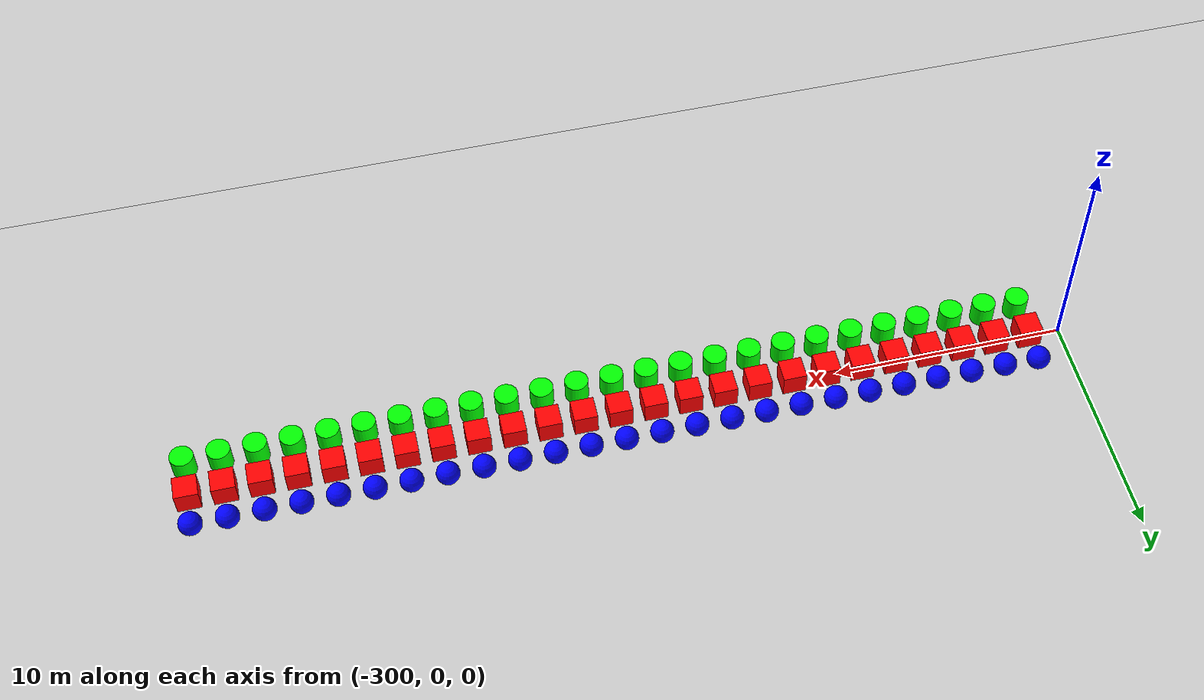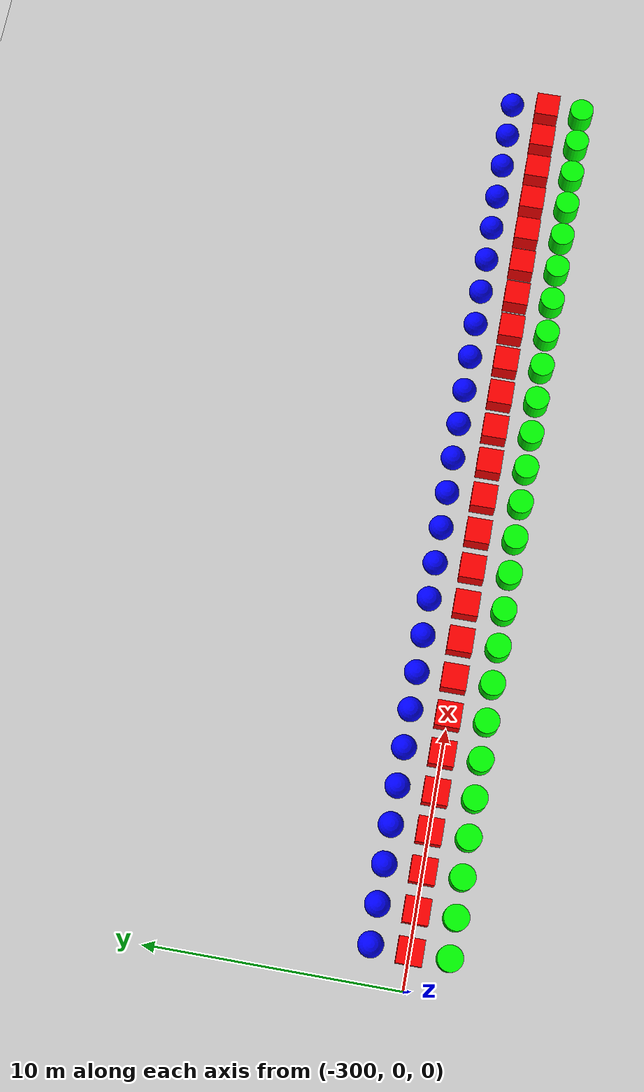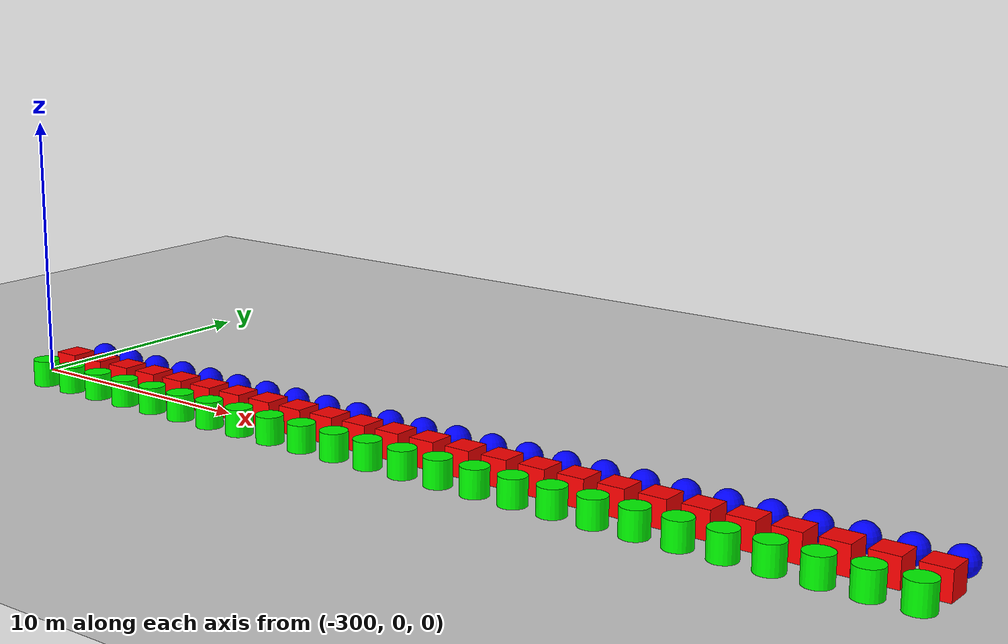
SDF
<sdf version="1.6">
 <world name="shapes">
  <model name="ground_plane">
   <static>true</static>
   <link name="link">
    <collision name="collision">
     <geometry><plane><normal>0 0 1</normal><size>100 100</size></plane></geometry>
    </collision>
    <visual name="visual">
     <geometry><plane><normal>0 0 1</normal><size>100 100</size></plane></geometry>
     <material>
      <ambient>0.8 0.8 0.8 1</ambient>
      <diffuse>0.8 0.8 0.8 1</diffuse>
      <specular>0.8 0.8 0.8 1</specular>
     </material>
    </visual>
   </link>
  </model>
  <model name="box_301">
   <static>false</static>
   <pose>-298.5 0 0.5 0 0 0</pose>
   <link name="box_link">
    <inertial>
     <inertia><ixx>1</ixx><ixy>0</ixy><ixz>0</ixz><iyy>1</iyy><iyz>0</iyz><izz>1</izz></inertia>
     <mass>1.0</mass>
    </inertial>
    <collision name="box_collision"><geometry><box><size>1 1 1</size></box></geometry></collision>
    <visual name="box_visual">
     <geometry><box><size>1 1 1</size></box></geometry>
     <material><ambient>1 0 0 1</ambient><diffuse>1 0 0 1</diffuse><specular>1 0 0 1</specular></material>
    </visual>
   </link>
  </model>
  <model name="cylinder_301">
   <static>false</static>
   <pose>-298.5 -1.5 0.5 0 0 0</pose>
   <link name="cylinder_link">
    <inertial>
     <inertia><ixx>2</ixx><ixy>0</ixy><ixz>0</ixz><iyy>2</iyy><iyz>0</iyz><izz>2</izz></inertia>
     <mass>2.0</mass>
    </inertial>
    <collision name="cylinder_collision">
     <geometry><cylinder><radius>0.5</radius><length>1.0</length></cylinder></geometry>
    </collision>
    <visual name="cylinder_visual">
     <geometry><cylinder><radius>0.5</radius><length>1.0</length></cylinder></geometry>
     <material><ambient>0 1 0 1</ambient><diffuse>0 1 0 1</diffuse><specular>0 1 0 1</specular></material>
    </visual>
   </link>
  </model>
  <model name="sphere_301">
   <static>false</static>
   <pose>-298.5 1.5 0.5 0 0 0</pose>
   <link name="sphere_link">
    <inertial>
     <inertia><ixx>3</ixx><ixy>0</ixy><ixz>0</ixz><iyy>3</iyy><iyz>0</iyz><izz>3</izz></inertia>
     <mass>3.0</mass>
    </inertial>
    <collision name="sphere_collision"><geometry><sphere><radius>0.5</radius></sphere></geometry></collision>
    <visual name="sphere_visual">
     <geometry><sphere><radius>0.5</radius></sphere></geometry>
     <material><ambient>0 0 1 1</ambient><diffuse>0 0 1 1</diffuse><specular>0 0 1 1</specular></material>
    </visual>
   </link>
  </model>
  <model name="box_302">
   <static>false</static>
   <pose>-297.0 0 0.5 0 0 0</pose>
   <link name="box_link">
    <inertial>
     <inertia><ixx>1</ixx><ixy>0</ixy><ixz>0</ixz><iyy>1</iyy><iyz>0</iyz><izz>1</izz></inertia>
     <mass>1.0</mass>
    </inertial>
    <collision name="box_collision"><geometry><box><size>1 1 1</size></box></geometry></collision>
    <visual name="box_visual">
     <geometry><box><size>1 1 1</size></box></geometry>
     <material><ambient>1 0 0 1</ambient><diffuse>1 0 0 1</diffuse><specular>1 0 0 1</specular></material>
    </visual>
   </link>
  </model>
  <model name="cylinder_302">
   <static>false</static>
   <pose>-297.0 -1.5 0.5 0 0 0</pose>
   <link name="cylinder_link">
    <inertial>
     <inertia><ixx>2</ixx><ixy>0</ixy><ixz>0</ixz><iyy>2</iyy><iyz>0</iyz><izz>2</izz></inertia>
     <mass>2.0</mass>
    </inertial>
    <collision name="cylinder_collision">
     <geometry><cylinder><radius>0.5</radius><length>1.0</length></cylinder></geometry>
    </collision>
    <visual name="cylinder_visual">
     <geometry><cylinder><radius>0.5</radius><length>1.0</length></cylinder></geometry>
     <material><ambient>0 1 0 1</ambient><diffuse>0 1 0 1</diffuse><specular>0 1 0 1</specular></material>
    </visual>
   </link>
  </model>
  <model name="sphere_302">
   <static>false</static>
   <pose>-297.0 1.5 0.5 0 0 0</pose>
   <link name="sphere_link">
    <inertial>
     <inertia><ixx>3</ixx><ixy>0</ixy><ixz>0</ixz><iyy>3</iyy><iyz>0</iyz><izz>3</izz></inertia>
     <mass>3.0</mass>
    </inertial>
    <collision name="sphere_collision"><geometry><sphere><radius>0.5</radius></sphere></geometry></collision>
    <visual name="sphere_visual">
     <geometry><sphere><radius>0.5</radius></sphere></geometry>
     <material><ambient>0 0 1 1</ambient><diffuse>0 0 1 1</diffuse><specular>0 0 1 1</specular></material>
    </visual>
   </link>
  </model>
  <model name="box_303">
   <static>false</static>
   <pose>-295.5 0 0.5 0 0 0</pose>
   <link name="box_link">
    <inertial>
     <inertia><ixx>1</ixx><ixy>0</ixy><ixz>0</ixz><iyy>1</iyy><iyz>0</iyz><izz>1</izz></inertia>
     <mass>1.0</mass>
    </inertial>
    <collision name="box_collision"><geometry><box><size>1 1 1</size></box></geometry></collision>
    <visual name="box_visual">
     <geometry><box><size>1 1 1</size></box></geometry>
     <material><ambient>1 0 0 1</ambient><diffuse>1 0 0 1</diffuse><specular>1 0 0 1</specular></material>
    </visual>
   </link>
  </model>
  <model name="cylinder_303">
   <static>false</static>
   <pose>-295.5 -1.5 0.5 0 0 0</pose>
   <link name="cylinder_link">
    <inertial>
     <inertia><ixx>2</ixx><ixy>0</ixy><ixz>0</ixz><iyy>2</iyy><iyz>0</iyz><izz>2</izz></inertia>
     <mass>2.0</mass>
    </inertial>
    <collision name="cylinder_collision">
     <geometry><cylinder><radius>0.5</radius><length>1.0</length></cylinder></geometry>
    </collision>
    <visual name="cylinder_visual">
     <geometry><cylinder><radius>0.5</radius><length>1.0</length></cylinder></geometry>
     <material><ambient>0 1 0 1</ambient><diffuse>0 1 0 1</diffuse><specular>0 1 0 1</specular></material>
    </visual>
   </link>
  </model>
  <model name="sphere_303">
   <static>false</static>
   <pose>-295.5 1.5 0.5 0 0 0</pose>
   <link name="sphere_link">
    <inertial>
     <inertia><ixx>3</ixx><ixy>0</ixy><ixz>0</ixz><iyy>3</iyy><iyz>0</iyz><izz>3</izz></inertia>
     <mass>3.0</mass>
    </inertial>
    <collision name="sphere_collision"><geometry><sphere><radius>0.5</radius></sphere></geometry></collision>
    <visual name="sphere_visual">
     <geometry><sphere><radius>0.5</radius></sphere></geometry>
     <material><ambient>0 0 1 1</ambient><diffuse>0 0 1 1</diffuse><specular>0 0 1 1</specular></material>
    </visual>
   </link>
  </model>
  <model name="box_304">
   <static>false</static>
   <pose>-294.0 0 0.5 0 0 0</pose>
   <link name="box_link">
    <inertial>
     <inertia><ixx>1</ixx><ixy>0</ixy><ixz>0</ixz><iyy>1</iyy><iyz>0</iyz><izz>1</izz></inertia>
     <mass>1.0</mass>
    </inertial>
    <collision name="box_collision"><geometry><box><size>1 1 1</size></box></geometry></collision>
    <visual name="box_visual">
     <geometry><box><size>1 1 1</size></box></geometry>
     <material><ambient>1 0 0 1</ambient><diffuse>1 0 0 1</diffuse><specular>1 0 0 1</specular></material>
    </visual>
   </link>
  </model>
  <model name="cylinder_304">
   <static>false</static>
   <pose>-294.0 -1.5 0.5 0 0 0</pose>
   <link name="cylinder_link">
    <inertial>
     <inertia><ixx>2</ixx><ixy>0</ixy><ixz>0</ixz><iyy>2</iyy><iyz>0</iyz><izz>2</izz></inertia>
     <mass>2.0</mass>
    </inertial>
    <collision name="cylinder_collision">
     <geometry><cylinder><radius>0.5</radius><length>1.0</length></cylinder></geometry>
    </collision>
    <visual name="cylinder_visual">
     <geometry><cylinder><radius>0.5</radius><length>1.0</length></cylinder></geometry>
     <material><ambient>0 1 0 1</ambient><diffuse>0 1 0 1</diffuse><specular>0 1 0 1</specular></material>
    </visual>
   </link>
  </model>
  <model name="sphere_304">
   <static>false</static>
   <pose>-294.0 1.5 0.5 0 0 0</pose>
   <link name="sphere_link">
    <inertial>
     <inertia><ixx>3</ixx><ixy>0</ixy><ixz>0</ixz><iyy>3</iyy><iyz>0</iyz><izz>3</izz></inertia>
     <mass>3.0</mass>
    </inertial>
    <collision name="sphere_collision"><geometry><sphere><radius>0.5</radius></sphere></geometry></collision>
    <visual name="sphere_visual">
     <geometry><sphere><radius>0.5</radius></sphere></geometry>
     <material><ambient>0 0 1 1</ambient><diffuse>0 0 1 1</diffuse><specular>0 0 1 1</specular></material>
    </visual>
   </link>
  </model>
  <model name="box_305">
   <static>false</static>
   <pose>-292.5 0 0.5 0 0 0</pose>
   <link name="box_link">
    <inertial>
     <inertia><ixx>1</ixx><ixy>0</ixy><ixz>0</ixz><iyy>1</iyy><iyz>0</iyz><izz>1</izz></inertia>
     <mass>1.0</mass>
    </inertial>
    <collision name="box_collision"><geometry><box><size>1 1 1</size></box></geometry></collision>
    <visual name="box_visual">
     <geometry><box><size>1 1 1</size></box></geometry>
     <material><ambient>1 0 0 1</ambient><diffuse>1 0 0 1</diffuse><specular>1 0 0 1</specular></material>
    </visual>
   </link>
  </model>
  <model name="cylinder_305">
   <static>false</static>
   <pose>-292.5 -1.5 0.5 0 0 0</pose>
   <link name="cylinder_link">
    <inertial>
     <inertia><ixx>2</ixx><ixy>0</ixy><ixz>0</ixz><iyy>2</iyy><iyz>0</iyz><izz>2</izz></inertia>
     <mass>2.0</mass>
    </inertial>
    <collision name="cylinder_collision">
     <geometry><cylinder><radius>0.5</radius><length>1.0</length></cylinder></geometry>
    </collision>
    <visual name="cylinder_visual">
     <geometry><cylinder><radius>0.5</radius><length>1.0</length></cylinder></geometry>
     <material><ambient>0 1 0 1</ambient><diffuse>0 1 0 1</diffuse><specular>0 1 0 1</specular></material>
    </visual>
   </link>
  </model>
  <model name="sphere_305">
   <static>false</static>
   <pose>-292.5 1.5 0.5 0 0 0</pose>
   <link name="sphere_link">
    <inertial>
     <inertia><ixx>3</ixx><ixy>0</ixy><ixz>0</ixz><iyy>3</iyy><iyz>0</iyz><izz>3</izz></inertia>
     <mass>3.0</mass>
    </inertial>
    <collision name="sphere_collision"><geometry><sphere><radius>0.5</radius></sphere></geometry></collision>
    <visual name="sphere_visual">
     <geometry><sphere><radius>0.5</radius></sphere></geometry>
     <material><ambient>0 0 1 1</ambient><diffuse>0 0 1 1</diffuse><specular>0 0 1 1</specular></material>
    </visual>
   </link>
  </model>
  <model name="box_306">
   <static>false</static>
   <pose>-291.0 0 0.5 0 0 0</pose>
   <link name="box_link">
    <inertial>
     <inertia><ixx>1</ixx><ixy>0</ixy><ixz>0</ixz><iyy>1</iyy><iyz>0</iyz><izz>1</izz></inertia>
     <mass>1.0</mass>
    </inertial>
    <collision name="box_collision"><geometry><box><size>1 1 1</size></box></geometry></collision>
    <visual name="box_visual">
     <geometry><box><size>1 1 1</size></box></geometry>
     <material><ambient>1 0 0 1</ambient><diffuse>1 0 0 1</diffuse><specular>1 0 0 1</specular></material>
    </visual>
   </link>
  </model>
  <model name="cylinder_306">
   <static>false</static>
   <pose>-291.0 -1.5 0.5 0 0 0</pose>
   <link name="cylinder_link">
    <inertial>
     <inertia><ixx>2</ixx><ixy>0</ixy><ixz>0</ixz><iyy>2</iyy><iyz>0</iyz><izz>2</izz></inertia>
     <mass>2.0</mass>
    </inertial>
    <collision name="cylinder_collision">
     <geometry><cylinder><radius>0.5</radius><length>1.0</length></cylinder></geometry>
    </collision>
    <visual name="cylinder_visual">
     <geometry><cylinder><radius>0.5</radius><length>1.0</length></cylinder></geometry>
     <material><ambient>0 1 0 1</ambient><diffuse>0 1 0 1</diffuse><specular>0 1 0 1</specular></material>
    </visual>
   </link>
  </model>
  <model name="sphere_306">
   <static>false</static>
   <pose>-291.0 1.5 0.5 0 0 0</pose>
   <link name="sphere_link">
    <inertial>
     <inertia><ixx>3</ixx><ixy>0</ixy><ixz>0</ixz><iyy>3</iyy><iyz>0</iyz><izz>3</izz></inertia>
     <mass>3.0</mass>
    </inertial>
    <collision name="sphere_collision"><geometry><sphere><radius>0.5</radius></sphere></geometry></collision>
    <visual name="sphere_visual">
     <geometry><sphere><radius>0.5</radius></sphere></geometry>
     <material><ambient>0 0 1 1</ambient><diffuse>0 0 1 1</diffuse><specular>0 0 1 1</specular></material>
    </visual>
   </link>
  </model>
  <model name="box_307">
   <static>false</static>
   <pose>-289.5 0 0.5 0 0 0</pose>
   <link name="box_link">
    <inertial>
     <inertia><ixx>1</ixx><ixy>0</ixy><ixz>0</ixz><iyy>1</iyy><iyz>0</iyz><izz>1</izz></inertia>
     <mass>1.0</mass>
    </inertial>
    <collision name="box_collision"><geometry><box><size>1 1 1</size></box></geometry></collision>
    <visual name="box_visual">
     <geometry><box><size>1 1 1</size></box></geometry>
     <material><ambient>1 0 0 1</ambient><diffuse>1 0 0 1</diffuse><specular>1 0 0 1</specular></material>
    </visual>
   </link>
  </model>
  <model name="cylinder_307">
   <static>false</static>
   <pose>-289.5 -1.5 0.5 0 0 0</pose>
   <link name="cylinder_link">
    <inertial>
     <inertia><ixx>2</ixx><ixy>0</ixy><ixz>0</ixz><iyy>2</iyy><iyz>0</iyz><izz>2</izz></inertia>
     <mass>2.0</mass>
    </inertial>
    <collision name="cylinder_collision">
     <geometry><cylinder><radius>0.5</radius><length>1.0</length></cylinder></geometry>
    </collision>
    <visual name="cylinder_visual">
     <geometry><cylinder><radius>0.5</radius><length>1.0</length></cylinder></geometry>
     <material><ambient>0 1 0 1</ambient><diffuse>0 1 0 1</diffuse><specular>0 1 0 1</specular></material>
    </visual>
   </link>
  </model>
  <model name="sphere_307">
   <static>false</static>
   <pose>-289.5 1.5 0.5 0 0 0</pose>
   <link name="sphere_link">
    <inertial>
     <inertia><ixx>3</ixx><ixy>0</ixy><ixz>0</ixz><iyy>3</iyy><iyz>0</iyz><izz>3</izz></inertia>
     <mass>3.0</mass>
    </inertial>
    <collision name="sphere_collision"><geometry><sphere><radius>0.5</radius></sphere></geometry></collision>
    <visual name="sphere_visual">
     <geometry><sphere><radius>0.5</radius></sphere></geometry>
     <material><ambient>0 0 1 1</ambient><diffuse>0 0 1 1</diffuse><specular>0 0 1 1</specular></material>
    </visual>
   </link>
  </model>
  <model name="box_308">
   <static>false</static>
   <pose>-288.0 0 0.5 0 0 0</pose>
   <link name="box_link">
    <inertial>
     <inertia><ixx>1</ixx><ixy>0</ixy><ixz>0</ixz><iyy>1</iyy><iyz>0</iyz><izz>1</izz></inertia>
     <mass>1.0</mass>
    </inertial>
    <collision name="box_collision"><geometry><box><size>1 1 1</size></box></geometry></collision>
    <visual name="box_visual">
     <geometry><box><size>1 1 1</size></box></geometry>
     <material><ambient>1 0 0 1</ambient><diffuse>1 0 0 1</diffuse><specular>1 0 0 1</specular></material>
    </visual>
   </link>
  </model>
  <model name="cylinder_308">
   <static>false</static>
   <pose>-288.0 -1.5 0.5 0 0 0</pose>
   <link name="cylinder_link">
    <inertial>
     <inertia><ixx>2</ixx><ixy>0</ixy><ixz>0</ixz><iyy>2</iyy><iyz>0</iyz><izz>2</izz></inertia>
     <mass>2.0</mass>
    </inertial>
    <collision name="cylinder_collision">
     <geometry><cylinder><radius>0.5</radius><length>1.0</length></cylinder></geometry>
    </collision>
    <visual name="cylinder_visual">
     <geometry><cylinder><radius>0.5</radius><length>1.0</length></cylinder></geometry>
     <material><ambient>0 1 0 1</ambient><diffuse>0 1 0 1</diffuse><specular>0 1 0 1</specular></material>
    </visual>
   </link>
  </model>
  <model name="sphere_308">
   <static>false</static>
   <pose>-288.0 1.5 0.5 0 0 0</pose>
   <link name="sphere_link">
    <inertial>
     <inertia><ixx>3</ixx><ixy>0</ixy><ixz>0</ixz><iyy>3</iyy><iyz>0</iyz><izz>3</izz></inertia>
     <mass>3.0</mass>
    </inertial>
    <collision name="sphere_collision"><geometry><sphere><radius>0.5</radius></sphere></geometry></collision>
    <visual name="sphere_visual">
     <geometry><sphere><radius>0.5</radius></sphere></geometry>
     <material><ambient>0 0 1 1</ambient><diffuse>0 0 1 1</diffuse><specular>0 0 1 1</specular></material>
    </visual>
   </link>
  </model>
  <model name="box_309">
   <static>false</static>
   <pose>-286.5 0 0.5 0 0 0</pose>
   <link name="box_link">
    <inertial>
     <inertia><ixx>1</ixx><ixy>0</ixy><ixz>0</ixz><iyy>1</iyy><iyz>0</iyz><izz>1</izz></inertia>
     <mass>1.0</mass>
    </inertial>
    <collision name="box_collision"><geometry><box><size>1 1 1</size></box></geometry></collision>
    <visual name="box_visual">
     <geometry><box><size>1 1 1</size></box></geometry>
     <material><ambient>1 0 0 1</ambient><diffuse>1 0 0 1</diffuse><specular>1 0 0 1</specular></material>
    </visual>
   </link>
  </model>
  <model name="cylinder_309">
   <static>false</static>
   <pose>-286.5 -1.5 0.5 0 0 0</pose>
   <link name="cylinder_link">
    <inertial>
     <inertia><ixx>2</ixx><ixy>0</ixy><ixz>0</ixz><iyy>2</iyy><iyz>0</iyz><izz>2</izz></inertia>
     <mass>2.0</mass>
    </inertial>
    <collision name="cylinder_collision">
     <geometry><cylinder><radius>0.5</radius><length>1.0</length></cylinder></geometry>
    </collision>
    <visual name="cylinder_visual">
     <geometry><cylinder><radius>0.5</radius><length>1.0</length></cylinder></geometry>
     <material><ambient>0 1 0 1</ambient><diffuse>0 1 0 1</diffuse><specular>0 1 0 1</specular></material>
    </visual>
   </link>
  </model>
  <model name="sphere_309">
   <static>false</static>
   <pose>-286.5 1.5 0.5 0 0 0</pose>
   <link name="sphere_link">
    <inertial>
     <inertia><ixx>3</ixx><ixy>0</ixy><ixz>0</ixz><iyy>3</iyy><iyz>0</iyz><izz>3</izz></inertia>
     <mass>3.0</mass>
    </inertial>
    <collision name="sphere_collision"><geometry><sphere><radius>0.5</radius></sphere></geometry></collision>
    <visual name="sphere_visual">
     <geometry><sphere><radius>0.5</radius></sphere></geometry>
     <material><ambient>0 0 1 1</ambient><diffuse>0 0 1 1</diffuse><specular>0 0 1 1</specular></material>
    </visual>
   </link>
  </model>
  <model name="box_310">
   <static>false</static>
   <pose>-285.0 0 0.5 0 0 0</pose>
   <link name="box_link">
    <inertial>
     <inertia><ixx>1</ixx><ixy>0</ixy><ixz>0</ixz><iyy>1</iyy><iyz>0</iyz><izz>1</izz></inertia>
     <mass>1.0</mass>
    </inertial>
    <collision name="box_collision"><geometry><box><size>1 1 1</size></box></geometry></collision>
    <visual name="box_visual">
     <geometry><box><size>1 1 1</size></box></geometry>
     <material><ambient>1 0 0 1</ambient><diffuse>1 0 0 1</diffuse><specular>1 0 0 1</specular></material>
    </visual>
   </link>
  </model>
  <model name="cylinder_310">
   <static>false</static>
   <pose>-285.0 -1.5 0.5 0 0 0</pose>
   <link name="cylinder_link">
    <inertial>
     <inertia><ixx>2</ixx><ixy>0</ixy><ixz>0</ixz><iyy>2</iyy><iyz>0</iyz><izz>2</izz></inertia>
     <mass>2.0</mass>
    </inertial>
    <collision name="cylinder_collision">
     <geometry><cylinder><radius>0.5</radius><length>1.0</length></cylinder></geometry>
    </collision>
    <visual name="cylinder_visual">
     <geometry><cylinder><radius>0.5</radius><length>1.0</length></cylinder></geometry>
     <material><ambient>0 1 0 1</ambient><diffuse>0 1 0 1</diffuse><specular>0 1 0 1</specular></material>
    </visual>
   </link>
  </model>
  <model name="sphere_310">
   <static>false</static>
   <pose>-285.0 1.5 0.5 0 0 0</pose>
   <link name="sphere_link">
    <inertial>
     <inertia><ixx>3</ixx><ixy>0</ixy><ixz>0</ixz><iyy>3</iyy><iyz>0</iyz><izz>3</izz></inertia>
     <mass>3.0</mass>
    </inertial>
    <collision name="sphere_collision"><geometry><sphere><radius>0.5</radius></sphere></geometry></collision>
    <visual name="sphere_visual">
     <geometry><sphere><radius>0.5</radius></sphere></geometry>
     <material><ambient>0 0 1 1</ambient><diffuse>0 0 1 1</diffuse><specular>0 0 1 1</specular></material>
    </visual>
   </link>
  </model>
  <model name="box_311">
   <static>false</static>
   <pose>-283.5 0 0.5 0 0 0</pose>
   <link name="box_link">
    <inertial>
     <inertia><ixx>1</ixx><ixy>0</ixy><ixz>0</ixz><iyy>1</iyy><iyz>0</iyz><izz>1</izz></inertia>
     <mass>1.0</mass>
    </inertial>
    <collision name="box_collision"><geometry><box><size>1 1 1</size></box></geometry></collision>
    <visual name="box_visual">
     <geometry><box><size>1 1 1</size></box></geometry>
     <material><ambient>1 0 0 1</ambient><diffuse>1 0 0 1</diffuse><specular>1 0 0 1</specular></material>
    </visual>
   </link>
  </model>
  <model name="cylinder_311">
   <static>false</static>
   <pose>-283.5 -1.5 0.5 0 0 0</pose>
   <link name="cylinder_link">
    <inertial>
     <inertia><ixx>2</ixx><ixy>0</ixy><ixz>0</ixz><iyy>2</iyy><iyz>0</iyz><izz>2</izz></inertia>
     <mass>2.0</mass>
    </inertial>
    <collision name="cylinder_collision">
     <geometry><cylinder><radius>0.5</radius><length>1.0</length></cylinder></geometry>
    </collision>
    <visual name="cylinder_visual">
     <geometry><cylinder><radius>0.5</radius><length>1.0</length></cylinder></geometry>
     <material><ambient>0 1 0 1</ambient><diffuse>0 1 0 1</diffuse><specular>0 1 0 1</specular></material>
    </visual>
   </link>
  </model>
  <model name="sphere_311">
   <static>false</static>
   <pose>-283.5 1.5 0.5 0 0 0</pose>
   <link name="sphere_link">
    <inertial>
     <inertia><ixx>3</ixx><ixy>0</ixy><ixz>0</ixz><iyy>3</iyy><iyz>0</iyz><izz>3</izz></inertia>
     <mass>3.0</mass>
    </inertial>
    <collision name="sphere_collision"><geometry><sphere><radius>0.5</radius></sphere></geometry></collision>
    <visual name="sphere_visual">
     <geometry><sphere><radius>0.5</radius></sphere></geometry>
     <material><ambient>0 0 1 1</ambient><diffuse>0 0 1 1</diffuse><specular>0 0 1 1</specular></material>
    </visual>
   </link>
  </model>
  <model name="box_312">
   <static>false</static>
   <pose>-282.0 0 0.5 0 0 0</pose>
   <link name="box_link">
    <inertial>
     <inertia><ixx>1</ixx><ixy>0</ixy><ixz>0</ixz><iyy>1</iyy><iyz>0</iyz><izz>1</izz></inertia>
     <mass>1.0</mass>
    </inertial>
    <collision name="box_collision"><geometry><box><size>1 1 1</size></box></geometry></collision>
    <visual name="box_visual">
     <geometry><box><size>1 1 1</size></box></geometry>
     <material><ambient>1 0 0 1</ambient><diffuse>1 0 0 1</diffuse><specular>1 0 0 1</specular></material>
    </visual>
   </link>
  </model>
  <model name="cylinder_312">
   <static>false</static>
   <pose>-282.0 -1.5 0.5 0 0 0</pose>
   <link name="cylinder_link">
    <inertial>
     <inertia><ixx>2</ixx><ixy>0</ixy><ixz>0</ixz><iyy>2</iyy><iyz>0</iyz><izz>2</izz></inertia>
     <mass>2.0</mass>
    </inertial>
    <collision name="cylinder_collision">
     <geometry><cylinder><radius>0.5</radius><length>1.0</length></cylinder></geometry>
    </collision>
    <visual name="cylinder_visual">
     <geometry><cylinder><radius>0.5</radius><length>1.0</length></cylinder></geometry>
     <material><ambient>0 1 0 1</ambient><diffuse>0 1 0 1</diffuse><specular>0 1 0 1</specular></material>
    </visual>
   </link>
  </model>
  <model name="sphere_312">
   <static>false</static>
   <pose>-282.0 1.5 0.5 0 0 0</pose>
   <link name="sphere_link">
    <inertial>
     <inertia><ixx>3</ixx><ixy>0</ixy><ixz>0</ixz><iyy>3</iyy><iyz>0</iyz><izz>3</izz></inertia>
     <mass>3.0</mass>
    </inertial>
    <collision name="sphere_collision"><geometry><sphere><radius>0.5</radius></sphere></geometry></collision>
    <visual name="sphere_visual">
     <geometry><sphere><radius>0.5</radius></sphere></geometry>
     <material><ambient>0 0 1 1</ambient><diffuse>0 0 1 1</diffuse><specular>0 0 1 1</specular></material>
    </visual>
   </link>
  </model>
  <model name="box_313">
   <static>false</static>
   <pose>-280.5 0 0.5 0 0 0</pose>
   <link name="box_link">
    <inertial>
     <inertia><ixx>1</ixx><ixy>0</ixy><ixz>0</ixz><iyy>1</iyy><iyz>0</iyz><izz>1</izz></inertia>
     <mass>1.0</mass>
    </inertial>
    <collision name="box_collision"><geometry><box><size>1 1 1</size></box></geometry></collision>
    <visual name="box_visual">
     <geometry><box><size>1 1 1</size></box></geometry>
     <material><ambient>1 0 0 1</ambient><diffuse>1 0 0 1</diffuse><specular>1 0 0 1</specular></material>
    </visual>
   </link>
  </model>
  <model name="cylinder_313">
   <static>false</static>
   <pose>-280.5 -1.5 0.5 0 0 0</pose>
   <link name="cylinder_link">
    <inertial>
     <inertia><ixx>2</ixx><ixy>0</ixy><ixz>0</ixz><iyy>2</iyy><iyz>0</iyz><izz>2</izz></inertia>
     <mass>2.0</mass>
    </inertial>
    <collision name="cylinder_collision">
     <geometry><cylinder><radius>0.5</radius><length>1.0</length></cylinder></geometry>
    </collision>
    <visual name="cylinder_visual">
     <geometry><cylinder><radius>0.5</radius><length>1.0</length></cylinder></geometry>
     <material><ambient>0 1 0 1</ambient><diffuse>0 1 0 1</diffuse><specular>0 1 0 1</specular></material>
    </visual>
   </link>
  </model>
  <model name="sphere_313">
   <static>false</static>
   <pose>-280.5 1.5 0.5 0 0 0</pose>
   <link name="sphere_link">
    <inertial>
     <inertia><ixx>3</ixx><ixy>0</ixy><ixz>0</ixz><iyy>3</iyy><iyz>0</iyz><izz>3</izz></inertia>
     <mass>3.0</mass>
    </inertial>
    <collision name="sphere_collision"><geometry><sphere><radius>0.5</radius></sphere></geometry></collision>
    <visual name="sphere_visual">
     <geometry><sphere><radius>0.5</radius></sphere></geometry>
     <material><ambient>0 0 1 1</ambient><diffuse>0 0 1 1</diffuse><specular>0 0 1 1</specular></material>
    </visual>
   </link>
  </model>
  <model name="box_314">
   <static>false</static>
   <pose>-279.0 0 0.5 0 0 0</pose>
   <link name="box_link">
    <inertial>
     <inertia><ixx>1</ixx><ixy>0</ixy><ixz>0</ixz><iyy>1</iyy><iyz>0</iyz><izz>1</izz></inertia>
     <mass>1.0</mass>
    </inertial>
    <collision name="box_collision"><geometry><box><size>1 1 1</size></box></geometry></collision>
    <visual name="box_visual">
     <geometry><box><size>1 1 1</size></box></geometry>
     <material><ambient>1 0 0 1</ambient><diffuse>1 0 0 1</diffuse><specular>1 0 0 1</specular></material>
    </visual>
   </link>
  </model>
  <model name="cylinder_314">
   <static>false</static>
   <pose>-279.0 -1.5 0.5 0 0 0</pose>
   <link name="cylinder_link">
    <inertial>
     <inertia><ixx>2</ixx><ixy>0</ixy><ixz>0</ixz><iyy>2</iyy><iyz>0</iyz><izz>2</izz></inertia>
     <mass>2.0</mass>
    </inertial>
    <collision name="cylinder_collision">
     <geometry><cylinder><radius>0.5</radius><length>1.0</length></cylinder></geometry>
    </collision>
    <visual name="cylinder_visual">
     <geometry><cylinder><radius>0.5</radius><length>1.0</length></cylinder></geometry>
     <material><ambient>0 1 0 1</ambient><diffuse>0 1 0 1</diffuse><specular>0 1 0 1</specular></material>
    </visual>
   </link>
  </model>
  <model name="sphere_314">
   <static>false</static>
   <pose>-279.0 1.5 0.5 0 0 0</pose>
   <link name="sphere_link">
    <inertial>
     <inertia><ixx>3</ixx><ixy>0</ixy><ixz>0</ixz><iyy>3</iyy><iyz>0</iyz><izz>3</izz></inertia>
     <mass>3.0</mass>
    </inertial>
    <collision name="sphere_collision"><geometry><sphere><radius>0.5</radius></sphere></geometry></collision>
    <visual name="sphere_visual">
     <geometry><sphere><radius>0.5</radius></sphere></geometry>
     <material><ambient>0 0 1 1</ambient><diffuse>0 0 1 1</diffuse><specular>0 0 1 1</specular></material>
    </visual>
   </link>
  </model>
  <model name="box_315">
   <static>false</static>
   <pose>-277.5 0 0.5 0 0 0</pose>
   <link name="box_link">
    <inertial>
     <inertia><ixx>1</ixx><ixy>0</ixy><ixz>0</ixz><iyy>1</iyy><iyz>0</iyz><izz>1</izz></inertia>
     <mass>1.0</mass>
    </inertial>
    <collision name="box_collision"><geometry><box><size>1 1 1</size></box></geometry></collision>
    <visual name="box_visual">
     <geometry><box><size>1 1 1</size></box></geometry>
     <material><ambient>1 0 0 1</ambient><diffuse>1 0 0 1</diffuse><specular>1 0 0 1</specular></material>
    </visual>
   </link>
  </model>
  <model name="cylinder_315">
   <static>false</static>
   <pose>-277.5 -1.5 0.5 0 0 0</pose>
   <link name="cylinder_link">
    <inertial>
     <inertia><ixx>2</ixx><ixy>0</ixy><ixz>0</ixz><iyy>2</iyy><iyz>0</iyz><izz>2</izz></inertia>
     <mass>2.0</mass>
    </inertial>
    <collision name="cylinder_collision">
     <geometry><cylinder><radius>0.5</radius><length>1.0</length></cylinder></geometry>
    </collision>
    <visual name="cylinder_visual">
     <geometry><cylinder><radius>0.5</radius><length>1.0</length></cylinder></geometry>
     <material><ambient>0 1 0 1</ambient><diffuse>0 1 0 1</diffuse><specular>0 1 0 1</specular></material>
    </visual>
   </link>
  </model>
  <model name="sphere_315">
   <static>false</static>
   <pose>-277.5 1.5 0.5 0 0 0</pose>
   <link name="sphere_link">
    <inertial>
     <inertia><ixx>3</ixx><ixy>0</ixy><ixz>0</ixz><iyy>3</iyy><iyz>0</iyz><izz>3</izz></inertia>
     <mass>3.0</mass>
    </inertial>
    <collision name="sphere_collision"><geometry><sphere><radius>0.5</radius></sphere></geometry></collision>
    <visual name="sphere_visual">
     <geometry><sphere><radius>0.5</radius></sphere></geometry>
     <material><ambient>0 0 1 1</ambient><diffuse>0 0 1 1</diffuse><specular>0 0 1 1</specular></material>
    </visual>
   </link>
  </model>
  <model name="box_316">
   <static>false</static>
   <pose>-276.0 0 0.5 0 0 0</pose>
   <link name="box_link">
    <inertial>
     <inertia><ixx>1</ixx><ixy>0</ixy><ixz>0</ixz><iyy>1</iyy><iyz>0</iyz><izz>1</izz></inertia>
     <mass>1.0</mass>
    </inertial>
    <collision name="box_collision"><geometry><box><size>1 1 1</size></box></geometry></collision>
    <visual name="box_visual">
     <geometry><box><size>1 1 1</size></box></geometry>
     <material><ambient>1 0 0 1</ambient><diffuse>1 0 0 1</diffuse><specular>1 0 0 1</specular></material>
    </visual>
   </link>
  </model>
  <model name="cylinder_316">
   <static>false</static>
   <pose>-276.0 -1.5 0.5 0 0 0</pose>
   <link name="cylinder_link">
    <inertial>
     <inertia><ixx>2</ixx><ixy>0</ixy><ixz>0</ixz><iyy>2</iyy><iyz>0</iyz><izz>2</izz></inertia>
     <mass>2.0</mass>
    </inertial>
    <collision name="cylinder_collision">
     <geometry><cylinder><radius>0.5</radius><length>1.0</length></cylinder></geometry>
    </collision>
    <visual name="cylinder_visual">
     <geometry><cylinder><radius>0.5</radius><length>1.0</length></cylinder></geometry>
     <material><ambient>0 1 0 1</ambient><diffuse>0 1 0 1</diffuse><specular>0 1 0 1</specular></material>
    </visual>
   </link>
  </model>
  <model name="sphere_316">
   <static>false</static>
   <pose>-276.0 1.5 0.5 0 0 0</pose>
   <link name="sphere_link">
    <inertial>
     <inertia><ixx>3</ixx><ixy>0</ixy><ixz>0</ixz><iyy>3</iyy><iyz>0</iyz><izz>3</izz></inertia>
     <mass>3.0</mass>
    </inertial>
    <collision name="sphere_collision"><geometry><sphere><radius>0.5</radius></sphere></geometry></collision>
    <visual name="sphere_visual">
     <geometry><sphere><radius>0.5</radius></sphere></geometry>
     <material><ambient>0 0 1 1</ambient><diffuse>0 0 1 1</diffuse><specular>0 0 1 1</specular></material>
    </visual>
   </link>
  </model>
  <model name="box_317">
   <static>false</static>
   <pose>-274.5 0 0.5 0 0 0</pose>
   <link name="box_link">
    <inertial>
     <inertia><ixx>1</ixx><ixy>0</ixy><ixz>0</ixz><iyy>1</iyy><iyz>0</iyz><izz>1</izz></inertia>
     <mass>1.0</mass>
    </inertial>
    <collision name="box_collision"><geometry><box><size>1 1 1</size></box></geometry></collision>
    <visual name="box_visual">
     <geometry><box><size>1 1 1</size></box></geometry>
     <material><ambient>1 0 0 1</ambient><diffuse>1 0 0 1</diffuse><specular>1 0 0 1</specular></material>
    </visual>
   </link>
  </model>
  <model name="cylinder_317">
   <static>false</static>
   <pose>-274.5 -1.5 0.5 0 0 0</pose>
   <link name="cylinder_link">
    <inertial>
     <inertia><ixx>2</ixx><ixy>0</ixy><ixz>0</ixz><iyy>2</iyy><iyz>0</iyz><izz>2</izz></inertia>
     <mass>2.0</mass>
    </inertial>
    <collision name="cylinder_collision">
     <geometry><cylinder><radius>0.5</radius><length>1.0</length></cylinder></geometry>
    </collision>
    <visual name="cylinder_visual">
     <geometry><cylinder><radius>0.5</radius><length>1.0</length></cylinder></geometry>
     <material><ambient>0 1 0 1</ambient><diffuse>0 1 0 1</diffuse><specular>0 1 0 1</specular></material>
    </visual>
   </link>
  </model>
  <model name="sphere_317">
   <static>false</static>
   <pose>-274.5 1.5 0.5 0 0 0</pose>
   <link name="sphere_link">
    <inertial>
     <inertia><ixx>3</ixx><ixy>0</ixy><ixz>0</ixz><iyy>3</iyy><iyz>0</iyz><izz>3</izz></inertia>
     <mass>3.0</mass>
    </inertial>
    <collision name="sphere_collision"><geometry><sphere><radius>0.5</radius></sphere></geometry></collision>
    <visual name="sphere_visual">
     <geometry><sphere><radius>0.5</radius></sphere></geometry>
     <material><ambient>0 0 1 1</ambient><diffuse>0 0 1 1</diffuse><specular>0 0 1 1</specular></material>
    </visual>
   </link>
  </model>
  <model name="box_318">
   <static>false</static>
   <pose>-273.0 0 0.5 0 0 0</pose>
   <link name="box_link">
    <inertial>
     <inertia><ixx>1</ixx><ixy>0</ixy><ixz>0</ixz><iyy>1</iyy><iyz>0</iyz><izz>1</izz></inertia>
     <mass>1.0</mass>
    </inertial>
    <collision name="box_collision"><geometry><box><size>1 1 1</size></box></geometry></collision>
    <visual name="box_visual">
     <geometry><box><size>1 1 1</size></box></geometry>
     <material><ambient>1 0 0 1</ambient><diffuse>1 0 0 1</diffuse><specular>1 0 0 1</specular></material>
    </visual>
   </link>
  </model>
  <model name="cylinder_318">
   <static>false</static>
   <pose>-273.0 -1.5 0.5 0 0 0</pose>
   <link name="cylinder_link">
    <inertial>
     <inertia><ixx>2</ixx><ixy>0</ixy><ixz>0</ixz><iyy>2</iyy><iyz>0</iyz><izz>2</izz></inertia>
     <mass>2.0</mass>
    </inertial>
    <collision name="cylinder_collision">
     <geometry><cylinder><radius>0.5</radius><length>1.0</length></cylinder></geometry>
    </collision>
    <visual name="cylinder_visual">
     <geometry><cylinder><radius>0.5</radius><length>1.0</length></cylinder></geometry>
     <material><ambient>0 1 0 1</ambient><diffuse>0 1 0 1</diffuse><specular>0 1 0 1</specular></material>
    </visual>
   </link>
  </model>
  <model name="sphere_318">
   <static>false</static>
   <pose>-273.0 1.5 0.5 0 0 0</pose>
   <link name="sphere_link">
    <inertial>
     <inertia><ixx>3</ixx><ixy>0</ixy><ixz>0</ixz><iyy>3</iyy><iyz>0</iyz><izz>3</izz></inertia>
     <mass>3.0</mass>
    </inertial>
    <collision name="sphere_collision"><geometry><sphere><radius>0.5</radius></sphere></geometry></collision>
    <visual name="sphere_visual">
     <geometry><sphere><radius>0.5</radius></sphere></geometry>
     <material><ambient>0 0 1 1</ambient><diffuse>0 0 1 1</diffuse><specular>0 0 1 1</specular></material>
    </visual>
   </link>
  </model>
  <model name="box_319">
   <static>false</static>
   <pose>-271.5 0 0.5 0 0 0</pose>
   <link name="box_link">
    <inertial>
     <inertia><ixx>1</ixx><ixy>0</ixy><ixz>0</ixz><iyy>1</iyy><iyz>0</iyz><izz>1</izz></inertia>
     <mass>1.0</mass>
    </inertial>
    <collision name="box_collision"><geometry><box><size>1 1 1</size></box></geometry></collision>
    <visual name="box_visual">
     <geometry><box><size>1 1 1</size></box></geometry>
     <material><ambient>1 0 0 1</ambient><diffuse>1 0 0 1</diffuse><specular>1 0 0 1</specular></material>
    </visual>
   </link>
  </model>
  <model name="cylinder_319">
   <static>false</static>
   <pose>-271.5 -1.5 0.5 0 0 0</pose>
   <link name="cylinder_link">
    <inertial>
     <inertia><ixx>2</ixx><ixy>0</ixy><ixz>0</ixz><iyy>2</iyy><iyz>0</iyz><izz>2</izz></inertia>
     <mass>2.0</mass>
    </inertial>
    <collision name="cylinder_collision">
     <geometry><cylinder><radius>0.5</radius><length>1.0</length></cylinder></geometry>
    </collision>
    <visual name="cylinder_visual">
     <geometry><cylinder><radius>0.5</radius><length>1.0</length></cylinder></geometry>
     <material><ambient>0 1 0 1</ambient><diffuse>0 1 0 1</diffuse><specular>0 1 0 1</specular></material>
    </visual>
   </link>
  </model>
  <model name="sphere_319">
   <static>false</static>
   <pose>-271.5 1.5 0.5 0 0 0</pose>
   <link name="sphere_link">
    <inertial>
     <inertia><ixx>3</ixx><ixy>0</ixy><ixz>0</ixz><iyy>3</iyy><iyz>0</iyz><izz>3</izz></inertia>
     <mass>3.0</mass>
    </inertial>
    <collision name="sphere_collision"><geometry><sphere><radius>0.5</radius></sphere></geometry></collision>
    <visual name="sphere_visual">
     <geometry><sphere><radius>0.5</radius></sphere></geometry>
     <material><ambient>0 0 1 1</ambient><diffuse>0 0 1 1</diffuse><specular>0 0 1 1</specular></material>
    </visual>
   </link>
  </model>
  <model name="box_320">
   <static>false</static>
   <pose>-270.0 0 0.5 0 0 0</pose>
   <link name="box_link">
    <inertial>
     <inertia><ixx>1</ixx><ixy>0</ixy><ixz>0</ixz><iyy>1</iyy><iyz>0</iyz><izz>1</izz></inertia>
     <mass>1.0</mass>
    </inertial>
    <collision name="box_collision"><geometry><box><size>1 1 1</size></box></geometry></collision>
    <visual name="box_visual">
     <geometry><box><size>1 1 1</size></box></geometry>
     <material><ambient>1 0 0 1</ambient><diffuse>1 0 0 1</diffuse><specular>1 0 0 1</specular></material>
    </visual>
   </link>
  </model>
  <model name="cylinder_320">
   <static>false</static>
   <pose>-270.0 -1.5 0.5 0 0 0</pose>
   <link name="cylinder_link">
    <inertial>
     <inertia><ixx>2</ixx><ixy>0</ixy><ixz>0</ixz><iyy>2</iyy><iyz>0</iyz><izz>2</izz></inertia>
     <mass>2.0</mass>
    </inertial>
    <collision name="cylinder_collision">
     <geometry><cylinder><radius>0.5</radius><length>1.0</length></cylinder></geometry>
    </collision>
    <visual name="cylinder_visual">
     <geometry><cylinder><radius>0.5</radius><length>1.0</length></cylinder></geometry>
     <material><ambient>0 1 0 1</ambient><diffuse>0 1 0 1</diffuse><specular>0 1 0 1</specular></material>
    </visual>
   </link>
  </model>
  <model name="sphere_320">
   <static>false</static>
   <pose>-270.0 1.5 0.5 0 0 0</pose>
   <link name="sphere_link">
    <inertial>
     <inertia><ixx>3</ixx><ixy>0</ixy><ixz>0</ixz><iyy>3</iyy><iyz>0</iyz><izz>3</izz></inertia>
     <mass>3.0</mass>
    </inertial>
    <collision name="sphere_collision"><geometry><sphere><radius>0.5</radius></sphere></geometry></collision>
    <visual name="sphere_visual">
     <geometry><sphere><radius>0.5</radius></sphere></geometry>
     <material><ambient>0 0 1 1</ambient><diffuse>0 0 1 1</diffuse><specular>0 0 1 1</specular></material>
    </visual>
   </link>
  </model>
  <model name="box_321">
   <static>false</static>
   <pose>-268.5 0 0.5 0 0 0</pose>
   <link name="box_link">
    <inertial>
     <inertia><ixx>1</ixx><ixy>0</ixy><ixz>0</ixz><iyy>1</iyy><iyz>0</iyz><izz>1</izz></inertia>
     <mass>1.0</mass>
    </inertial>
    <collision name="box_collision"><geometry><box><size>1 1 1</size></box></geometry></collision>
    <visual name="box_visual">
     <geometry><box><size>1 1 1</size></box></geometry>
     <material><ambient>1 0 0 1</ambient><diffuse>1 0 0 1</diffuse><specular>1 0 0 1</specular></material>
    </visual>
   </link>
  </model>
  <model name="cylinder_321">
   <static>false</static>
   <pose>-268.5 -1.5 0.5 0 0 0</pose>
   <link name="cylinder_link">
    <inertial>
     <inertia><ixx>2</ixx><ixy>0</ixy><ixz>0</ixz><iyy>2</iyy><iyz>0</iyz><izz>2</izz></inertia>
     <mass>2.0</mass>
    </inertial>
    <collision name="cylinder_collision">
     <geometry><cylinder><radius>0.5</radius><length>1.0</length></cylinder></geometry>
    </collision>
    <visual name="cylinder_visual">
     <geometry><cylinder><radius>0.5</radius><length>1.0</length></cylinder></geometry>
     <material><ambient>0 1 0 1</ambient><diffuse>0 1 0 1</diffuse><specular>0 1 0 1</specular></material>
    </visual>
   </link>
  </model>
  <model name="sphere_321">
   <static>false</static>
   <pose>-268.5 1.5 0.5 0 0 0</pose>
   <link name="sphere_link">
    <inertial>
     <inertia><ixx>3</ixx><ixy>0</ixy><ixz>0</ixz><iyy>3</iyy><iyz>0</iyz><izz>3</izz></inertia>
     <mass>3.0</mass>
    </inertial>
    <collision name="sphere_collision"><geometry><sphere><radius>0.5</radius></sphere></geometry></collision>
    <visual name="sphere_visual">
     <geometry><sphere><radius>0.5</radius></sphere></geometry>
     <material><ambient>0 0 1 1</ambient><diffuse>0 0 1 1</diffuse><specular>0 0 1 1</specular></material>
    </visual>
   </link>
  </model>
  <model name="box_322">
   <static>false</static>
   <pose>-267.0 0 0.5 0 0 0</pose>
   <link name="box_link">
    <inertial>
     <inertia><ixx>1</ixx><ixy>0</ixy><ixz>0</ixz><iyy>1</iyy><iyz>0</iyz><izz>1</izz></inertia>
     <mass>1.0</mass>
    </inertial>
    <collision name="box_collision"><geometry><box><size>1 1 1</size></box></geometry></collision>
    <visual name="box_visual">
     <geometry><box><size>1 1 1</size></box></geometry>
     <material><ambient>1 0 0 1</ambient><diffuse>1 0 0 1</diffuse><specular>1 0 0 1</specular></material>
    </visual>
   </link>
  </model>
  <model name="cylinder_322">
   <static>false</static>
   <pose>-267.0 -1.5 0.5 0 0 0</pose>
   <link name="cylinder_link">
    <inertial>
     <inertia><ixx>2</ixx><ixy>0</ixy><ixz>0</ixz><iyy>2</iyy><iyz>0</iyz><izz>2</izz></inertia>
     <mass>2.0</mass>
    </inertial>
    <collision name="cylinder_collision">
     <geometry><cylinder><radius>0.5</radius><length>1.0</length></cylinder></geometry>
    </collision>
    <visual name="cylinder_visual">
     <geometry><cylinder><radius>0.5</radius><length>1.0</length></cylinder></geometry>
     <material><ambient>0 1 0 1</ambient><diffuse>0 1 0 1</diffuse><specular>0 1 0 1</specular></material>
    </visual>
   </link>
  </model>
  <model name="sphere_322">
   <static>false</static>
   <pose>-267.0 1.5 0.5 0 0 0</pose>
   <link name="sphere_link">
    <inertial>
     <inertia><ixx>3</ixx><ixy>0</ixy><ixz>0</ixz><iyy>3</iyy><iyz>0</iyz><izz>3</izz></inertia>
     <mass>3.0</mass>
    </inertial>
    <collision name="sphere_collision"><geometry><sphere><radius>0.5</radius></sphere></geometry></collision>
    <visual name="sphere_visual">
     <geometry><sphere><radius>0.5</radius></sphere></geometry>
     <material><ambient>0 0 1 1</ambient><diffuse>0 0 1 1</diffuse><specular>0 0 1 1</specular></material>
    </visual>
   </link>
  </model>
  <model name="box_323">
   <static>false</static>
   <pose>-265.5 0 0.5 0 0 0</pose>
   <link name="box_link">
    <inertial>
     <inertia><ixx>1</ixx><ixy>0</ixy><ixz>0</ixz><iyy>1</iyy><iyz>0</iyz><izz>1</izz></inertia>
     <mass>1.0</mass>
    </inertial>
    <collision name="box_collision"><geometry><box><size>1 1 1</size></box></geometry></collision>
    <visual name="box_visual">
     <geometry><box><size>1 1 1</size></box></geometry>
     <material><ambient>1 0 0 1</ambient><diffuse>1 0 0 1</diffuse><specular>1 0 0 1</specular></material>
    </visual>
   </link>
  </model>
  <model name="cylinder_323">
   <static>false</static>
   <pose>-265.5 -1.5 0.5 0 0 0</pose>
   <link name="cylinder_link">
    <inertial>
     <inertia><ixx>2</ixx><ixy>0</ixy><ixz>0</ixz><iyy>2</iyy><iyz>0</iyz><izz>2</izz></inertia>
     <mass>2.0</mass>
    </inertial>
    <collision name="cylinder_collision">
     <geometry><cylinder><radius>0.5</radius><length>1.0</length></cylinder></geometry>
    </collision>
    <visual name="cylinder_visual">
     <geometry><cylinder><radius>0.5</radius><length>1.0</length></cylinder></geometry>
     <material><ambient>0 1 0 1</ambient><diffuse>0 1 0 1</diffuse><specular>0 1 0 1</specular></material>
    </visual>
   </link>
  </model>
  <model name="sphere_323">
   <static>false</static>
   <pose>-265.5 1.5 0.5 0 0 0</pose>
   <link name="sphere_link">
    <inertial>
     <inertia><ixx>3</ixx><ixy>0</ixy><ixz>0</ixz><iyy>3</iyy><iyz>0</iyz><izz>3</izz></inertia>
     <mass>3.0</mass>
    </inertial>
    <collision name="sphere_collision"><geometry><sphere><radius>0.5</radius></sphere></geometry></collision>
    <visual name="sphere_visual">
     <geometry><sphere><radius>0.5</radius></sphere></geometry>
     <material><ambient>0 0 1 1</ambient><diffuse>0 0 1 1</diffuse><specular>0 0 1 1</specular></material>
    </visual>
   </link>
  </model>
  <model name="box_324">
   <static>false</static>
   <pose>-264.0 0 0.5 0 0 0</pose>
   <link name="box_link">
    <inertial>
     <inertia><ixx>1</ixx><ixy>0</ixy><ixz>0</ixz><iyy>1</iyy><iyz>0</iyz><izz>1</izz></inertia>
     <mass>1.0</mass>
    </inertial>
    <collision name="box_collision"><geometry><box><size>1 1 1</size></box></geometry></collision>
    <visual name="box_visual">
     <geometry><box><size>1 1 1</size></box></geometry>
     <material><ambient>1 0 0 1</ambient><diffuse>1 0 0 1</diffuse><specular>1 0 0 1</specular></material>
    </visual>
   </link>
  </model>
  <model name="cylinder_324">
   <static>false</static>
   <pose>-264.0 -1.5 0.5 0 0 0</pose>
   <link name="cylinder_link">
    <inertial>
     <inertia><ixx>2</ixx><ixy>0</ixy><ixz>0</ixz><iyy>2</iyy><iyz>0</iyz><izz>2</izz></inertia>
     <mass>2.0</mass>
    </inertial>
    <collision name="cylinder_collision">
     <geometry><cylinder><radius>0.5</radius><length>1.0</length></cylinder></geometry>
    </collision>
    <visual name="cylinder_visual">
     <geometry><cylinder><radius>0.5</radius><length>1.0</length></cylinder></geometry>
     <material><ambient>0 1 0 1</ambient><diffuse>0 1 0 1</diffuse><specular>0 1 0 1</specular></material>
    </visual>
   </link>
  </model>
  <model name="sphere_324">
   <static>false</static>
   <pose>-264.0 1.5 0.5 0 0 0</pose>
   <link name="sphere_link">
    <inertial>
     <inertia><ixx>3</ixx><ixy>0</ixy><ixz>0</ixz><iyy>3</iyy><iyz>0</iyz><izz>3</izz></inertia>
     <mass>3.0</mass>
    </inertial>
    <collision name="sphere_collision"><geometry><sphere><radius>0.5</radius></sphere></geometry></collision>
    <visual name="sphere_visual">
     <geometry><sphere><radius>0.5</radius></sphere></geometry>
     <material><ambient>0 0 1 1</ambient><diffuse>0 0 1 1</diffuse><specular>0 0 1 1</specular></material>
    </visual>
   </link>
  </model>
  <model name="box_325">
   <static>false</static>
   <pose>-262.5 0 0.5 0 0 0</pose>
   <link name="box_link">
    <inertial>
     <inertia><ixx>1</ixx><ixy>0</ixy><ixz>0</ixz><iyy>1</iyy><iyz>0</iyz><izz>1</izz></inertia>
     <mass>1.0</mass>
    </inertial>
    <collision name="box_collision"><geometry><box><size>1 1 1</size></box></geometry></collision>
    <visual name="box_visual">
     <geometry><box><size>1 1 1</size></box></geometry>
     <material><ambient>1 0 0 1</ambient><diffuse>1 0 0 1</diffuse><specular>1 0 0 1</specular></material>
    </visual>
   </link>
  </model>
  <model name="cylinder_325">
   <static>false</static>
   <pose>-262.5 -1.5 0.5 0 0 0</pose>
   <link name="cylinder_link">
    <inertial>
     <inertia><ixx>2</ixx><ixy>0</ixy><ixz>0</ixz><iyy>2</iyy><iyz>0</iyz><izz>2</izz></inertia>
     <mass>2.0</mass>
    </inertial>
    <collision name="cylinder_collision">
     <geometry><cylinder><radius>0.5</radius><length>1.0</length></cylinder></geometry>
    </collision>
    <visual name="cylinder_visual">
     <geometry><cylinder><radius>0.5</radius><length>1.0</length></cylinder></geometry>
     <material><ambient>0 1 0 1</ambient><diffuse>0 1 0 1</diffuse><specular>0 1 0 1</specular></material>
    </visual>
   </link>
  </model>
  <model name="sphere_325">
   <static>false</static>
   <pose>-262.5 1.5 0.5 0 0 0</pose>
   <link name="sphere_link">
    <inertial>
     <inertia><ixx>3</ixx><ixy>0</ixy><ixz>0</ixz><iyy>3</iyy><iyz>0</iyz><izz>3</izz></inertia>
     <mass>3.0</mass>
    </inertial>
    <collision name="sphere_collision"><geometry><sphere><radius>0.5</radius></sphere></geometry></collision>
    <visual name="sphere_visual">
     <geometry><sphere><radius>0.5</radius></sphere></geometry>
     <material><ambient>0 0 1 1</ambient><diffuse>0 0 1 1</diffuse><specular>0 0 1 1</specular></material>
    </visual>
   </link>
  </model>
 </world>
</sdf>
